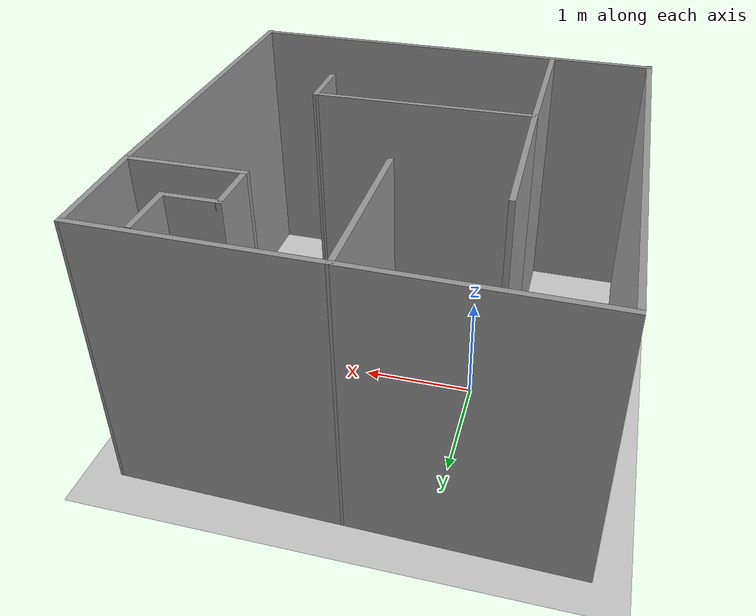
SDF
<sdf version="1.6">
 <world name="default">
  <light name="sun" type="directional">
   <pose>0 0 10 0 -0 0</pose>
   <diffuse>0.8 0.8 0.8 1</diffuse>
   <specular>0.2 0.2 0.2 1</specular>
   <attenuation>
    <range>1000</range>
    <constant>0.9</constant>
    <linear>0.01</linear>
    <quadratic>0.001</quadratic>
   </attenuation>
   <direction>-0.5 0.1 -0.9</direction>
  </light>
  <model name="ground_plane">
   <static>1</static>
   <link name="link">
    <collision name="collision">
     <geometry><plane><normal>0 0 1</normal><size>100 100</size></plane></geometry>
     <surface>
      <contact><collide_bitmask>65535</collide_bitmask></contact>
      <friction><ode><mu>100</mu><mu2>50</mu2></ode></friction>
     </surface>
    </collision>
    <visual name="visual">
     <cast_shadows>0</cast_shadows>
     <geometry><plane><normal>0 0 1</normal><size>100 100</size></plane></geometry>
     <material>
      <script><uri>file://media/materials/scripts/gazebo.material</uri><name>Gazebo/Grey</name></script>
     </material>
    </visual>
   </link>
  </model>
  <gravity>0 0 -9.8</gravity>
  <magnetic_field>6e-06 2.3e-05 -4.2e-05</magnetic_field>
  <atmosphere type="adiabatic"/>
  <physics name="default_physics" default="0" type="ode">
   <max_step_size>0.001</max_step_size>
   <real_time_factor>1</real_time_factor>
   <real_time_update_rate>1000</real_time_update_rate>
  </physics>
  <scene><ambient>0.4 0.4 0.4 1</ambient><background>0.7 0.7 0.7 1</background><shadows>1</shadows></scene>
  <audio><device>default</device></audio>
  <spherical_coordinates>
   <surface_model>EARTH_WGS84</surface_model>
   <latitude_deg>0</latitude_deg>
   <longitude_deg>0</longitude_deg>
   <elevation>0</elevation>
   <heading_deg>0</heading_deg>
  </spherical_coordinates>
  <model name="002">
   <pose>0.705963 -0.207527 0 0 -0 0</pose>
   <link name="Wall_102">
    <collision name="Wall_102_Collision">
     <geometry><box><size>0.5 0.05 2.5</size></box></geometry>
     <pose>0 0 1.25 0 -0 0</pose>
    </collision>
    <visual name="Wall_102_Visual">
     <pose>0 0 1.25 0 -0 0</pose>
     <geometry><box><size>0.5 0.05 2.5</size></box></geometry>
     <material>
      <script><uri>file://media/materials/scripts/gazebo.material</uri><name>Gazebo/Grey</name></script>
      <ambient>1 1 1 1</ambient>
     </material>
     <meta><layer>0</layer></meta>
    </visual>
    <pose>0.939037 -0.781473 0 0 -0 -1.5708</pose>
   </link>
   <link name="Wall_104">
    <collision name="Wall_104_Collision">
     <geometry><box><size>3.92686 0.05 2.5</size></box></geometry>
     <pose>0 0 1.25 0 -0 0</pose>
    </collision>
    <visual name="Wall_104_Visual">
     <pose>0 0 1.25 0 -0 0</pose>
     <geometry><box><size>3.92686 0.05 2.5</size></box></geometry>
     <material>
      <script><uri>file://media/materials/scripts/gazebo.material</uri><name>Gazebo/Grey</name></script>
      <ambient>1 1 1 1</ambient>
     </material>
     <meta><layer>0</layer></meta>
    </visual>
    <pose>0.011284 -1.96372 0 0 -0 3.12779</pose>
   </link>
   <link name="Wall_106">
    <collision name="Wall_106_Collision">
     <geometry><box><size>1.39968 0.05 2.5</size></box></geometry>
     <pose>0 0 1.25 0 -0 0</pose>
    </collision>
    <visual name="Wall_106_Visual">
     <pose>0 0 1.25 0 -0 0</pose>
     <geometry><box><size>1.39968 0.05 2.5</size></box></geometry>
     <material>
      <script><uri>file://media/materials/scripts/gazebo.material</uri><name>Gazebo/Grey</name></script>
      <ambient>1 1 1 1</ambient>
     </material>
     <meta><layer>0</layer></meta>
    </visual>
    <pose>-1.01096 -1.24247 0 0 -0 -1.5708</pose>
   </link>
   <link name="Wall_59">
    <collision name="Wall_59_Collision">
     <geometry><box><size>3.98857 0.05 2.5</size></box></geometry>
     <pose>0 0 1.25 0 -0 0</pose>
    </collision>
    <visual name="Wall_59_Visual">
     <pose>0 0 1.25 0 -0 0</pose>
     <geometry><box><size>3.98857 0.05 2.5</size></box></geometry>
     <material>
      <script><uri>file://media/materials/scripts/gazebo.material</uri><name>Gazebo/Grey</name></script>
      <ambient>1 1 1 1</ambient>
     </material>
     <meta><layer>0</layer></meta>
    </visual>
    <pose>-1.93846 0.020777 0 0 -0 1.57664</pose>
   </link>
   <link name="Wall_61">
    <collision name="Wall_61_Collision">
     <geometry><box><size>1.96581 0.05 2.5</size></box></geometry>
     <pose>0 0 1.25 0 -0 0</pose>
    </collision>
    <visual name="Wall_61_Visual">
     <pose>0 0 1.25 0 -0 0</pose>
     <geometry><box><size>1.96581 0.05 2.5</size></box></geometry>
     <material>
      <script><uri>file://media/materials/scripts/gazebo.material</uri><name>Gazebo/Grey</name></script>
      <ambient>1 1 1 1</ambient>
     </material>
     <meta><layer>0</layer></meta>
    </visual>
    <pose>-0.992213 1.98428 0 0 -0 -0.018009</pose>
   </link>
   <link name="Wall_67">
    <collision name="Wall_67_Collision">
     <geometry><box><size>2 0.05 2.5</size></box></geometry>
     <pose>0 0 1.25 0 -0 0</pose>
    </collision>
    <visual name="Wall_67_Visual">
     <pose>0 0 1.25 0 -0 0</pose>
     <geometry><box><size>2 0.05 2.5</size></box></geometry>
     <material>
      <script><uri>file://media/materials/scripts/gazebo.material</uri><name>Gazebo/Grey</name></script>
      <ambient>1 1 1 1</ambient>
     </material>
     <meta><layer>0</layer></meta>
    </visual>
    <pose>-0.035963 -0.561973 0 0 -0 0.005641</pose>
   </link>
   <link name="Wall_69">
    <collision name="Wall_69_Collision">
     <geometry><box><size>1.5 0.05 2.5</size></box></geometry>
     <pose>0 0 1.25 0 -0 0</pose>
    </collision>
    <visual name="Wall_69_Visual">
     <pose>0 0 1.25 0 -0 0</pose>
     <geometry><box><size>1.5 0.05 2.5</size></box></geometry>
     <material>
      <script><uri>file://media/materials/scripts/gazebo.material</uri><name>Gazebo/Grey</name></script>
      <ambient>1 1 1 1</ambient>
     </material>
     <meta><layer>0</layer></meta>
    </visual>
    <pose>-1.02256 0.157599 0 0 -0 1.58678</pose>
   </link>
   <link name="Wall_71">
    <collision name="Wall_71_Collision">
     <geometry><box><size>1.5 0.05 2.5</size></box></geometry>
     <pose>0 0 1.25 0 -0 0</pose>
    </collision>
    <visual name="Wall_71_Visual">
     <pose>0 0 1.25 0 -0 0</pose>
     <geometry><box><size>1.5 0.05 2.5</size></box></geometry>
     <material>
      <script><uri>file://media/materials/scripts/gazebo.material</uri><name>Gazebo/Grey</name></script>
      <ambient>1 1 1 1</ambient>
     </material>
     <meta><layer>0</layer></meta>
    </visual>
    <pose>-0.034463 1.24203 0 0 -0 -1.5708</pose>
   </link>
   <link name="Wall_75">
    <collision name="Wall_75_Collision">
     <geometry><box><size>2.0003 0.05 2.5</size></box></geometry>
     <pose>0 0 1.25 0 -0 0</pose>
    </collision>
    <visual name="Wall_75_Visual">
     <pose>0 0 1.25 0 -0 0</pose>
     <geometry><box><size>2.0003 0.05 2.5</size></box></geometry>
     <material>
      <script><uri>file://media/materials/scripts/gazebo.material</uri><name>Gazebo/Grey</name></script>
      <ambient>1 1 1 1</ambient>
     </material>
     <meta><layer>0</layer></meta>
    </visual>
    <pose>0.940537 1.94978 0 0 -0 -0.01769</pose>
   </link>
   <link name="Wall_88">
    <collision name="Wall_88_Collision">
     <geometry><box><size>1.00061 0.05 2.5</size></box></geometry>
     <pose>0 0 1.25 0 -0 0</pose>
    </collision>
    <visual name="Wall_88_Visual">
     <pose>0 0 1.25 0 -0 0</pose>
     <geometry><box><size>1.00061 0.05 2.5</size></box></geometry>
     <material>
      <script><uri>file://media/materials/scripts/gazebo.material</uri><name>Gazebo/Grey</name></script>
      <ambient>1 1 1 1</ambient>
     </material>
     <meta><layer>0</layer></meta>
    </visual>
    <pose>1.93253 1.45753 0 0 -0 -1.53503</pose>
   </link>
   <link name="Wall_90">
    <collision name="Wall_90_Collision">
     <geometry><box><size>1.03449 0.05 2.5</size></box></geometry>
     <pose>0 0 1.25 0 -0 0</pose>
    </collision>
    <visual name="Wall_90_Visual">
     <pose>0 0 1.25 0 -0 0</pose>
     <geometry><box><size>1.03449 0.05 2.5</size></box></geometry>
     <material>
      <script><uri>file://media/materials/scripts/gazebo.material</uri><name>Gazebo/Grey</name></script>
      <ambient>1 1 1 1</ambient>
     </material>
     <meta><layer>0</layer></meta>
    </visual>
    <pose>1.45728 0.982527 0 0 -0 -3.14159</pose>
   </link>
   <link name="Wall_92">
    <collision name="Wall_92_Collision">
     <geometry><box><size>0.5 0.05 2.5</size></box></geometry>
     <pose>0 0 1.25 0 -0 0</pose>
    </collision>
    <visual name="Wall_92_Visual">
     <pose>0 0 1.25 0 -0 0</pose>
     <geometry><box><size>0.5 0.05 2.5</size></box></geometry>
     <material>
      <script><uri>file://media/materials/scripts/gazebo.material</uri><name>Gazebo/Grey</name></script>
      <ambient>1 1 1 1</ambient>
     </material>
     <meta><layer>0</layer></meta>
    </visual>
    <pose>0.965037 1.20753 0 0 -0 1.5708</pose>
   </link>
   <link name="Wall_94">
    <collision name="Wall_94_Collision">
     <geometry><box><size>0.5 0.05 2.5</size></box></geometry>
     <pose>0 0 1.25 0 -0 0</pose>
    </collision>
    <visual name="Wall_94_Visual">
     <pose>0 0 1.25 0 -0 0</pose>
     <geometry><box><size>0.5 0.05 2.5</size></box></geometry>
     <material>
      <script><uri>file://media/materials/scripts/gazebo.material</uri><name>Gazebo/Grey</name></script>
      <ambient>1 1 1 1</ambient>
     </material>
     <meta><layer>0</layer></meta>
    </visual>
    <pose>1.19004 1.43253 0 0 -0 0</pose>
   </link>
   <link name="Wall_96">
    <collision name="Wall_96_Collision">
     <geometry><box><size>0.5 0.05 2.5</size></box></geometry>
     <pose>0 0 1.25 0 -0 0</pose>
    </collision>
    <visual name="Wall_96_Visual">
     <pose>0 0 1.25 0 -0 0</pose>
     <geometry><box><size>0.5 0.05 2.5</size></box></geometry>
     <material>
      <script><uri>file://media/materials/scripts/gazebo.material</uri><name>Gazebo/Grey</name></script>
      <ambient>1 1 1 1</ambient>
     </material>
     <meta><layer>0</layer></meta>
    </visual>
    <pose>1.41504 1.65753 0 0 -0 1.5708</pose>
   </link>
   <link name="Wall_98">
    <collision name="Wall_98_Collision">
     <geometry><box><size>3.023 0.05 2.5</size></box></geometry>
     <pose>0 0 1.25 0 -0 0</pose>
    </collision>
    <visual name="Wall_98_Visual">
     <pose>0 0 1.25 0 -0 0</pose>
     <geometry><box><size>3.023 0.05 2.5</size></box></geometry>
     <material>
      <script><uri>file://media/materials/scripts/gazebo.material</uri><name>Gazebo/Grey</name></script>
      <ambient>1 1 1 1</ambient>
     </material>
     <meta><layer>0</layer></meta>
    </visual>
    <pose>1.94953 -0.515473 0 0 -0 -1.5708</pose>
   </link>
   <static>1</static>
  </model>
  <model name="mycar">
   <link name="base_footprint">
    <inertial>
     <pose>0.00127 0 0.093611 0 -0 0</pose>
     <mass>0.63</mass>
     <inertia>
      <ixx>0.00557395</ixx>
      <ixy>0</ixy>
      <ixz>-1.11111e-05</ixz>
      <iyy>0.00563694</iyy>
      <iyz>0</iyz>
      <izz>0.00261003</izz>
     </inertia>
    </inertial>
    <collision name="base_footprint_fixed_joint_lump__base_link_collision">
     <pose>0 0 0.055 0 -0 0</pose>
     <geometry><cylinder><length>0.08</length><radius>0.1</radius></cylinder></geometry>
    </collision>
    <collision name="base_footprint_fixed_joint_lump__camera_collision_1">
     <pose>0.08 0 0.1075 0 -0 0</pose>
     <geometry><box><size>0.01 0.025 0.025</size></box></geometry>
    </collision>
    <collision name="base_footprint_fixed_joint_lump__support_collision_2">
     <pose>0 0 0.17 0 -0 0</pose>
     <geometry><cylinder><length>0.15</length><radius>0.01</radius></cylinder></geometry>
    </collision>
    <collision name="base_footprint_fixed_joint_lump__laser_collision_3">
     <pose>0 0 0.27 0 -0 0</pose>
     <geometry><cylinder><length>0.05</length><radius>0.03</radius></cylinder></geometry>
    </collision>
    <visual name="base_footprint_visual"><geometry><sphere><radius>0.001</radius></sphere></geometry></visual>
    <visual name="base_footprint_fixed_joint_lump__base_link_visual_1">
     <pose>0 0 0.055 0 -0 0</pose>
     <geometry><cylinder><length>0.08</length><radius>0.1</radius></cylinder></geometry>
     <material>
      <script><name>Gazebo/Yellow</name><uri>file://media/materials/scripts/gazebo.material</uri></script>
     </material>
    </visual>
    <visual name="base_footprint_fixed_joint_lump__camera_visual_2">
     <pose>0.08 0 0.1075 0 -0 0</pose>
     <geometry><box><size>0.01 0.025 0.025</size></box></geometry>
     <material>
      <script><name>Gazebo/Blue</name><uri>file://media/materials/scripts/gazebo.material</uri></script>
     </material>
    </visual>
    <visual name="base_footprint_fixed_joint_lump__support_visual_3">
     <pose>0 0 0.17 0 -0 0</pose>
     <geometry><cylinder><length>0.15</length><radius>0.01</radius></cylinder></geometry>
     <material>
      <script><name>Gazebo/White</name><uri>file://media/materials/scripts/gazebo.material</uri></script>
     </material>
    </visual>
    <visual name="base_footprint_fixed_joint_lump__laser_visual_4">
     <pose>0 0 0.27 0 -0 0</pose>
     <geometry><cylinder><length>0.05</length><radius>0.03</radius></cylinder></geometry>
     <material>
      <script><name>Gazebo/Black</name><uri>file://media/materials/scripts/gazebo.material</uri></script>
     </material>
    </visual>
    <sensor name="camera_node" type="camera">
     <update_rate>30</update_rate>
     <camera name="head">
      <horizontal_fov>1.39626</horizontal_fov>
      <image><width>1280</width><height>720</height><format>R8G8B8</format></image>
      <clip><near>0.02</near><far>300</far></clip>
      <noise><type>gaussian</type><mean>0</mean><stddev>0.007</stddev></noise>
     </camera>
     <plugin name="gazebo_camera" filename="libgazebo_ros_camera.so">
      <alwaysOn>1</alwaysOn>
      <updateRate>0.0</updateRate>
      <cameraName>/camera</cameraName>
      <imageTopicName>image_raw</imageTopicName>
      <cameraInfoTopicName>camera_info</cameraInfoTopicName>
      <frameName>camera</frameName>
      <hackBaseline>0.07</hackBaseline>
      <distortionK1>0.0</distortionK1>
      <distortionK2>0.0</distortionK2>
      <distortionK3>0.0</distortionK3>
      <distortionT1>0.0</distortionT1>
      <distortionT2>0.0</distortionT2>
      <robotNamespace>/</robotNamespace>
     </plugin>
     <pose>0.08 0 0.1075 0 -0 0</pose>
    </sensor>
    <sensor name="camera" type="depth">
     <always_on>1</always_on>
     <update_rate>20</update_rate>
     <camera name="__default__">
      <horizontal_fov>1.0472</horizontal_fov>
      <image><format>R8G8B8</format><width>640</width><height>480</height></image>
      <clip><near>0.05</near><far>8</far></clip>
     </camera>
     <plugin name="kinect_camera_controller" filename="libgazebo_ros_openni_kinect.so">
      <cameraName>camera</cameraName>
      <alwaysOn>1</alwaysOn>
      <updateRate>10</updateRate>
      <imageTopicName>rgb/image_raw</imageTopicName>
      <depthImageTopicName>depth/image_raw</depthImageTopicName>
      <pointCloudTopicName>depth/points</pointCloudTopicName>
      <cameraInfoTopicName>rgb/camera_info</cameraInfoTopicName>
      <depthImageCameraInfoTopicName>depth/camera_info</depthImageCameraInfoTopicName>
      <frameName>support_depth</frameName>
      <baseline>0.1</baseline>
      <distortion_k1>0.0</distortion_k1>
      <distortion_k2>0.0</distortion_k2>
      <distortion_k3>0.0</distortion_k3>
      <distortion_t1>0.0</distortion_t1>
      <distortion_t2>0.0</distortion_t2>
      <pointCloudCutoff>0.4</pointCloudCutoff>
      <robotNamespace>/</robotNamespace>
     </plugin>
     <pose>0 0 0.17 0 -0 0</pose>
    </sensor>
    <sensor name="rplidar" type="ray">
     <visualize>1</visualize>
     <update_rate>5.5</update_rate>
     <ray>
      <scan>
       <horizontal>
        <samples>360</samples>
        <resolution>1</resolution>
        <min_angle>-3</min_angle>
        <max_angle>3</max_angle>
       </horizontal>
       <vertical><samples>1</samples><min_angle>0</min_angle><max_angle>0</max_angle></vertical>
      </scan>
      <range><min>0.1</min><max>30</max><resolution>0.01</resolution></range>
      <noise><type>gaussian</type><mean>0</mean><stddev>0.01</stddev></noise>
     </ray>
     <plugin name="gazebo_rplidar" filename="libgazebo_ros_laser.so">
      <topicName>/scan</topicName>
      <frameName>laser</frameName>
      <robotNamespace>/</robotNamespace>
     </plugin>
     <pose>0 0 0.27 0 -0 0</pose>
    </sensor>
   </link>
   <link name="back_wheel">
    <pose>-0.0925 0 0.0075 0 -0 0</pose>
    <inertial>
     <mass>0.03</mass>
     <inertia>
      <ixx>6.75e-07</ixx>
      <ixy>0</ixy>
      <ixz>0</ixz>
      <iyy>6.75e-07</iyy>
      <iyz>0</iyz>
      <izz>6.75e-07</izz>
     </inertia>
    </inertial>
    <collision name="back_wheel_collision">
     <geometry><sphere><radius>0.0075</radius></sphere></geometry>
    </collision>
    <visual name="back_wheel_visual">
     <geometry><sphere><radius>0.0075</radius></sphere></geometry>
     <material>
      <script><name>Gazebo/Red</name><uri>file://media/materials/scripts/gazebo.material</uri></script>
     </material>
    </visual>
   </link>
   <joint name="back_wheel2base_link" type="revolute">
    <child>back_wheel</child>
    <parent>base_footprint</parent>
    <axis>
     <xyz>1 1 1</xyz>
     <limit><lower>-1e+16</lower><upper>1e+16</upper></limit>
     <dynamics><spring_reference>0</spring_reference><spring_stiffness>0</spring_stiffness></dynamics>
     <use_parent_model_frame>1</use_parent_model_frame>
    </axis>
   </joint>
   <link name="front_wheel">
    <pose>0.0925 0 0.0075 0 -0 0</pose>
    <inertial>
     <mass>0.03</mass>
     <inertia>
      <ixx>6.75e-07</ixx>
      <ixy>0</ixy>
      <ixz>0</ixz>
      <iyy>6.75e-07</iyy>
      <iyz>0</iyz>
      <izz>6.75e-07</izz>
     </inertia>
    </inertial>
    <collision name="front_wheel_collision">
     <geometry><sphere><radius>0.0075</radius></sphere></geometry>
    </collision>
    <visual name="front_wheel_visual">
     <geometry><sphere><radius>0.0075</radius></sphere></geometry>
     <material>
      <script><name>Gazebo/Red</name><uri>file://media/materials/scripts/gazebo.material</uri></script>
     </material>
    </visual>
   </link>
   <joint name="front_wheel2base_link" type="revolute">
    <child>front_wheel</child>
    <parent>base_footprint</parent>
    <axis>
     <xyz>1 1 1</xyz>
     <limit><lower>-1e+16</lower><upper>1e+16</upper></limit>
     <dynamics><spring_reference>0</spring_reference><spring_stiffness>0</spring_stiffness></dynamics>
     <use_parent_model_frame>1</use_parent_model_frame>
    </axis>
   </joint>
   <link name="left_wheel">
    <pose>0 0.1 0.0325 0 -0 0</pose>
    <inertial>
     <mass>0.05</mass>
     <inertia>
      <ixx>1.41406e-05</ixx>
      <ixy>0</ixy>
      <ixz>0</ixz>
      <iyy>1.41406e-05</iyy>
      <iyz>0</iyz>
      <izz>2.64063e-05</izz>
     </inertia>
    </inertial>
    <collision name="left_wheel_collision">
     <pose>0 0 0 1.5708 -0 0</pose>
     <geometry><cylinder><length>0.015</length><radius>0.0325</radius></cylinder></geometry>
    </collision>
    <visual name="left_wheel_visual">
     <pose>0 0 0 1.5708 -0 0</pose>
     <geometry><cylinder><length>0.015</length><radius>0.0325</radius></cylinder></geometry>
     <material>
      <script><name>Gazebo/Red</name><uri>file://media/materials/scripts/gazebo.material</uri></script>
     </material>
    </visual>
   </link>
   <joint name="left_wheel2base_link" type="revolute">
    <child>left_wheel</child>
    <parent>base_footprint</parent>
    <axis>
     <xyz>0 1 0</xyz>
     <limit><lower>-1e+16</lower><upper>1e+16</upper></limit>
     <dynamics><spring_reference>0</spring_reference><spring_stiffness>0</spring_stiffness></dynamics>
     <use_parent_model_frame>1</use_parent_model_frame>
    </axis>
   </joint>
   <link name="right_wheel">
    <pose>0 -0.1 0.0325 0 -0 0</pose>
    <inertial>
     <mass>0.05</mass>
     <inertia>
      <ixx>1.41406e-05</ixx>
      <ixy>0</ixy>
      <ixz>0</ixz>
      <iyy>1.41406e-05</iyy>
      <iyz>0</iyz>
      <izz>2.64063e-05</izz>
     </inertia>
    </inertial>
    <collision name="right_wheel_collision">
     <pose>0 0 0 1.5708 -0 0</pose>
     <geometry><cylinder><length>0.015</length><radius>0.0325</radius></cylinder></geometry>
    </collision>
    <visual name="right_wheel_visual">
     <pose>0 0 0 1.5708 -0 0</pose>
     <geometry><cylinder><length>0.015</length><radius>0.0325</radius></cylinder></geometry>
     <material>
      <script><name>Gazebo/Red</name><uri>file://media/materials/scripts/gazebo.material</uri></script>
     </material>
    </visual>
   </link>
   <joint name="right_wheel2base_link" type="revolute">
    <child>right_wheel</child>
    <parent>base_footprint</parent>
    <axis>
     <xyz>0 1 0</xyz>
     <limit><lower>-1e+16</lower><upper>1e+16</upper></limit>
     <dynamics><spring_reference>0</spring_reference><spring_stiffness>0</spring_stiffness></dynamics>
     <use_parent_model_frame>1</use_parent_model_frame>
    </axis>
   </joint>
   <static>0</static>
   <plugin name="differential_drive_controller" filename="libgazebo_ros_diff_drive.so">
    <rosDebugLevel>Debug</rosDebugLevel>
    <publishWheelTF>1</publishWheelTF>
    <robotNamespace>/</robotNamespace>
    <publishTf>1</publishTf>
    <publishWheelJointState>1</publishWheelJointState>
    <alwaysOn>1</alwaysOn>
    <updateRate>100.0</updateRate>
    <legacyMode>1</legacyMode>
    <leftJoint>left_wheel2base_link</leftJoint>
    <rightJoint>right_wheel2base_link</rightJoint>
    <wheelSeparation>0.2</wheelSeparation>
    <wheelDiameter>0.065</wheelDiameter>
    <broadcastTF>1</broadcastTF>
    <wheelTorque>30</wheelTorque>
    <wheelAcceleration>1.8</wheelAcceleration>
    <commandTopic>cmd_vel</commandTopic>
    <odometryFrame>odom</odometryFrame>
    <odometryTopic>odom</odometryTopic>
    <robotBaseFrame>base_footprint</robotBaseFrame>
   </plugin>
   <pose>-0.14012 0.07013 -0 2e-06 -2e-06 0.395081</pose>
  </model>
 </world>
</sdf>
